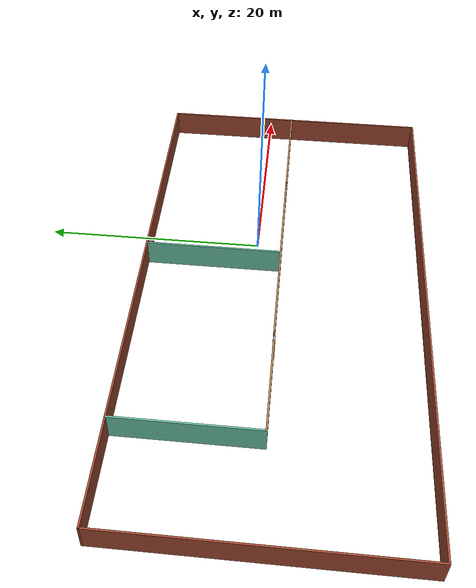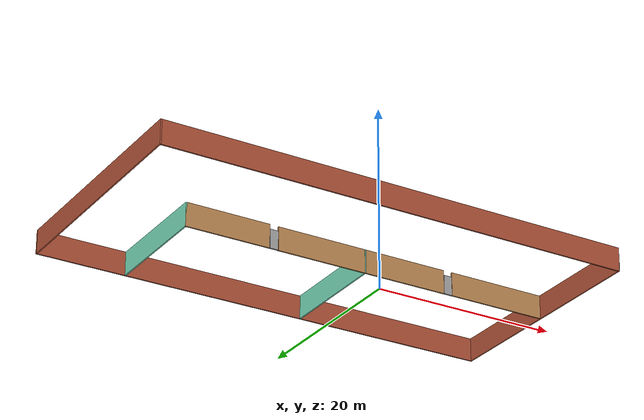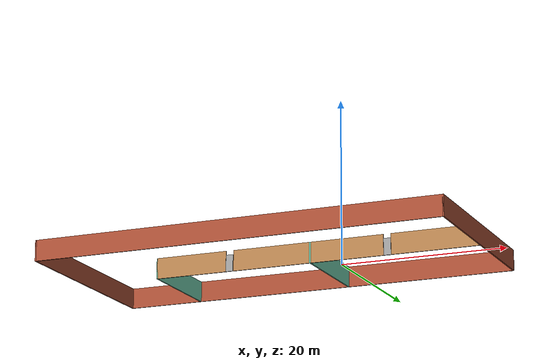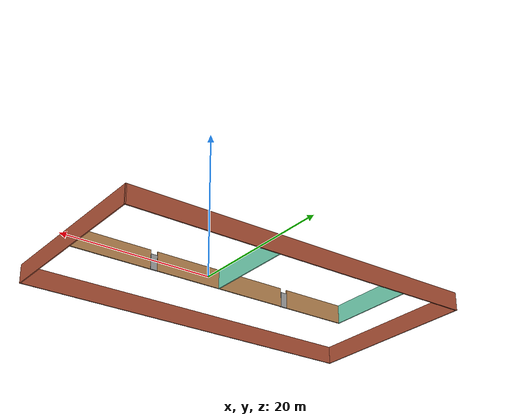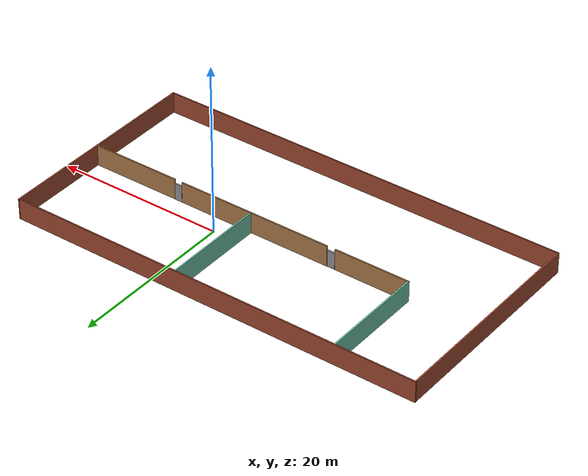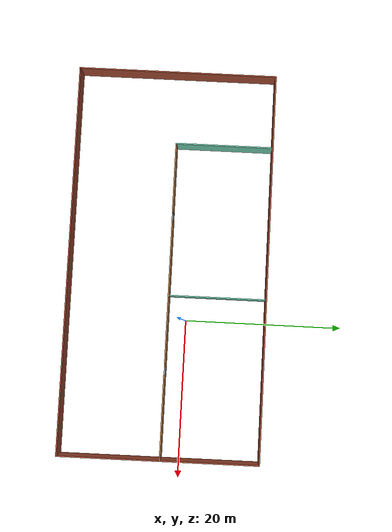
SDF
<?xml version='1.0'?>
<sdf version='1.6'>
  <model name='layout'>
    <pose frame=''>-7.22033 -2.50733 0 0 -0 0</pose>
    <link name='Door_0'>
      <collision name='Door_0_Collision'>
        <geometry>
          <box>
            <size>0.9 0.17 2</size>
          </box>
        </geometry>
        <pose frame=''>0 0 1 0 -0 0</pose>
      </collision>
      <visual name='Door_0_Visual'>
        <pose frame=''>0 0 1 0 -0 0</pose>
        <geometry>
          <box>
            <size>0.9 0.17 2</size>
          </box>
        </geometry>
        <material>
          <script>
            <uri>file://media/materials/scripts/gazebo.material</uri>
            <name>Gazebo/Grey</name>
          </script>
        </material>
      </visual>
      <pose frame=''>-6.05407 0.228772 0 0 -0 0</pose>
    </link>
    <link name='Door_1'>
      <collision name='Door_1_Collision'>
        <geometry>
          <box>
            <size>0.9 0.17 2</size>
          </box>
        </geometry>
        <pose frame=''>0 0 1 0 -0 0</pose>
      </collision>
      <visual name='Door_1_Visual'>
        <pose frame=''>0 0 1 0 -0 0</pose>
        <geometry>
          <box>
            <size>0.9 0.17 2</size>
          </box>
        </geometry>
        <material>
          <script>
            <uri>file://media/materials/scripts/gazebo.material</uri>
            <name>Gazebo/Grey</name>
          </script>
        </material>
      </visual>
      <pose frame=''>13.6541 0.258943 0 0 -0 0</pose>
    </link>
    <link name='Wall_1'>
      <collision name='Wall_1_Collision'>
        <geometry>
          <box>
            <size>25.5 0.15 2.5</size>
          </box>
        </geometry>
        <pose frame=''>0 0 1.25 0 -0 0</pose>
      </collision>
      <visual name='Wall_1_Visual'>
        <pose frame=''>0 0 1.25 0 -0 0</pose>
        <geometry>
          <box>
            <size>25.5 0.15 2.5</size>
          </box>
        </geometry>
        <material>
          <script>
            <uri>file://media/materials/scripts/gazebo.material</uri>
            <name>Gazebo/Bricks</name>
          </script>
          <ambient>1 1 1 1</ambient>
        </material>
        <meta>
          <layer>0</layer>
        </meta>
      </visual>
      <pose frame=''>-24.8 0 0 0 0 -1.5708</pose>
    </link>
    <link name='Wall_11'>
      <collision name='Wall_11_Collision'>
        <geometry>
          <box>
            <size>18.75 0.15 2.5</size>
          </box>
        </geometry>
        <pose frame=''>0 0 1.25 0 -0 0</pose>
      </collision>
      <visual name='Wall_11_Visual'>
        <pose frame=''>0 0 1.25 0 -0 0</pose>
        <geometry>
          <box>
            <size>18.75 0.15 2.5</size>
          </box>
        </geometry>
        <material>
          <script>
            <uri>file://media/materials/scripts/gazebo.material</uri>
            <name>Gazebo/Wood</name>
          </script>
          <ambient>1 1 1 1</ambient>
        </material>
        <meta>
          <layer>0</layer>
        </meta>
      </visual>
      <pose frame=''>3.81428 0.26543 0 0 -0 3.14159</pose>
    </link>
    <link name='Wall_13'>
      <collision name='Wall_13_Collision'>
        <geometry>
          <box>
            <size>12.5 0.15 2.5</size>
          </box>
        </geometry>
        <pose frame=''>0 0 1.25 0 -0 0</pose>
      </collision>
      <visual name='Wall_13_Visual'>
        <pose frame=''>0 0 1.25 0 -0 0</pose>
        <geometry>
          <box>
            <size>12.5 0.15 2.5</size>
          </box>
        </geometry>
        <material>
          <script>
            <uri>file://media/materials/scripts/gazebo.material</uri>
            <name>Gazebo/Grey</name>
          </script>
          <ambient>0.435294 0.796078 0.67451 1</ambient>
        </material>
        <meta>
          <layer>0</layer>
        </meta>
      </visual>
      <pose frame=''>4.13416 6.43045 0 0 -0 1.5708</pose>
    </link>
    <link name='Wall_2'>
      <collision name='Wall_2_Collision'>
        <geometry>
          <box>
            <size>49.75 0.15 2.5</size>
          </box>
        </geometry>
        <pose frame=''>0 0 1.25 0 -0 0</pose>
      </collision>
      <visual name='Wall_2_Visual'>
        <pose frame=''>0 0 1.25 0 -0 0</pose>
        <geometry>
          <box>
            <size>49.75 0.15 2.5</size>
          </box>
        </geometry>
        <material>
          <script>
            <uri>file://media/materials/scripts/gazebo.material</uri>
            <name>Gazebo/Bricks</name>
          </script>
          <ambient>1 1 1 1</ambient>
        </material>
        <meta>
          <layer>0</layer>
        </meta>
      </visual>
      <pose frame=''>0 -12.675 0 0 -0 0</pose>
    </link>
    <link name='Wall_3'>
      <collision name='Wall_3_Collision'>
        <geometry>
          <box>
            <size>25.5 0.15 2.5</size>
          </box>
        </geometry>
        <pose frame=''>0 0 1.25 0 -0 0</pose>
      </collision>
      <visual name='Wall_3_Visual'>
        <pose frame=''>0 0 1.25 0 -0 0</pose>
        <geometry>
          <box>
            <size>25.5 0.15 2.5</size>
          </box>
        </geometry>
        <material>
          <script>
            <uri>file://media/materials/scripts/gazebo.material</uri>
            <name>Gazebo/Bricks</name>
          </script>
          <ambient>1 1 1 1</ambient>
        </material>
        <meta>
          <layer>0</layer>
        </meta>
      </visual>
      <pose frame=''>24.8 0 0 0 -0 1.5708</pose>
    </link>
    <link name='Wall_4'>
      <collision name='Wall_4_Collision'>
        <geometry>
          <box>
            <size>49.75 0.15 2.5</size>
          </box>
        </geometry>
        <pose frame=''>0 0 1.25 0 -0 0</pose>
      </collision>
      <visual name='Wall_4_Visual'>
        <pose frame=''>0 0 1.25 0 -0 0</pose>
        <geometry>
          <box>
            <size>49.75 0.15 2.5</size>
          </box>
        </geometry>
        <material>
          <script>
            <uri>file://media/materials/scripts/gazebo.material</uri>
            <name>Gazebo/Bricks</name>
          </script>
          <ambient>1 1 1 1</ambient>
        </material>
        <meta>
          <layer>0</layer>
        </meta>
      </visual>
      <pose frame=''>0 12.675 0 0 -0 3.14159</pose>
    </link>
    <link name='Wall_6'>
      <collision name='Wall_6_Collision'>
        <geometry>
          <box>
            <size>12.5 0.15 2.5</size>
          </box>
        </geometry>
        <pose frame=''>0 0 1.25 0 -0 0</pose>
      </collision>
      <visual name='Wall_6_Visual'>
        <pose frame=''>0 0 1.25 0 -0 0</pose>
        <geometry>
          <box>
            <size>12.5 0.15 2.5</size>
          </box>
        </geometry>
        <material>
          <script>
            <uri>file://media/materials/scripts/gazebo.material</uri>
            <name>Gazebo/Grey</name>
          </script>
          <ambient>0.435294 0.796078 0.67451 1</ambient>
        </material>
        <meta>
          <layer>0</layer>
        </meta>
      </visual>
      <pose frame=''>-15.4424 6.41863 0 0 0 -1.5708</pose>
    </link>
    <link name='Wall_7'>
      <collision name='Wall_7_Collision'>
        <geometry>
          <box>
            <size>9 0.15 2.5</size>
          </box>
        </geometry>
        <pose frame=''>0 0 1.25 0 -0 0</pose>
      </collision>
      <visual name='Wall_7_Visual'>
        <pose frame=''>0 0 1.25 0 -0 0</pose>
        <geometry>
          <box>
            <size>9 0.15 2.5</size>
          </box>
        </geometry>
        <material>
          <script>
            <uri>file://media/materials/scripts/gazebo.material</uri>
            <name>Gazebo/Wood</name>
          </script>
          <ambient>1 1 1 1</ambient>
        </material>
        <meta>
          <layer>0</layer>
        </meta>
      </visual>
      <pose frame=''>-11.0174 0.243629 0 0 -0 0</pose>
    </link>
    <link name='Wall_9'>
      <collision name='Wall_9_Collision'>
        <geometry>
          <box>
            <size>10.75 0.15 2.5</size>
          </box>
        </geometry>
        <pose frame=''>0 0 1.25 0 -0 0</pose>
      </collision>
      <visual name='Wall_9_Visual'>
        <pose frame=''>0 0 1.25 0 -0 0</pose>
        <geometry>
          <box>
            <size>10.75 0.15 2.5</size>
          </box>
        </geometry>
        <material>
          <script>
            <uri>file://media/materials/scripts/gazebo.material</uri>
            <name>Gazebo/Wood</name>
          </script>
          <ambient>1 1 1 1</ambient>
        </material>
        <meta>
          <layer>0</layer>
        </meta>
      </visual>
      <pose frame=''>19.4899 0.248865 0 0 -0 3.14159</pose>
    </link>
    <static>1</static>
  </model>
</sdf>
